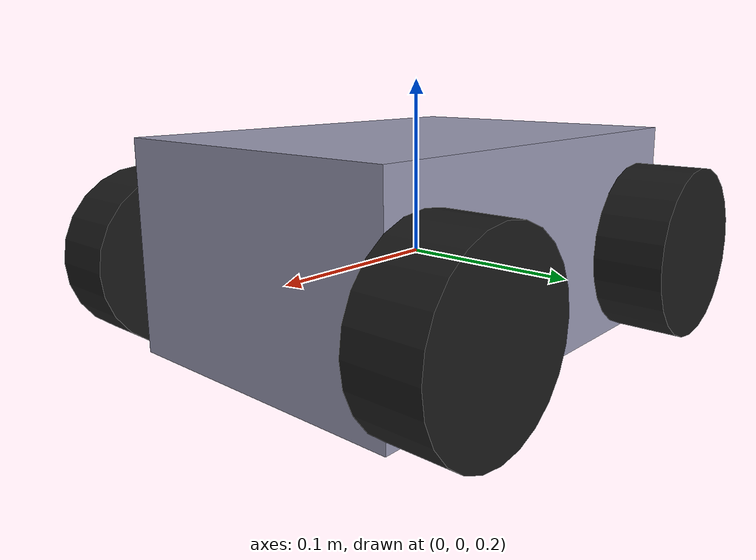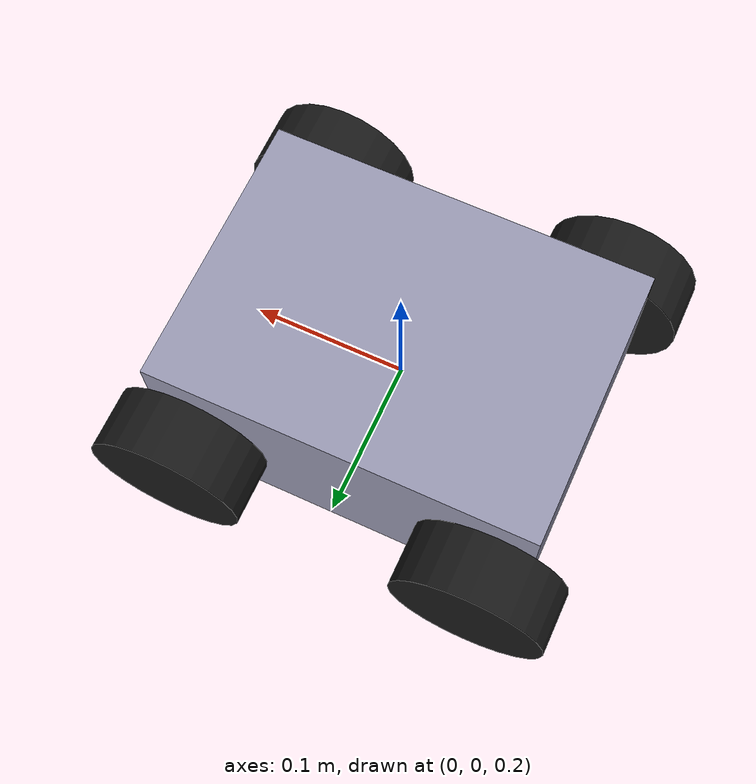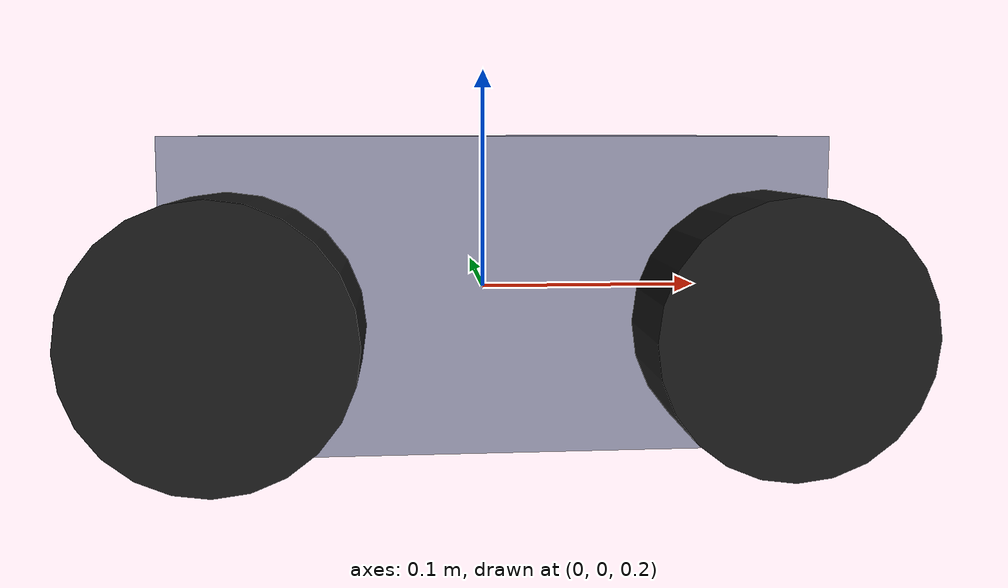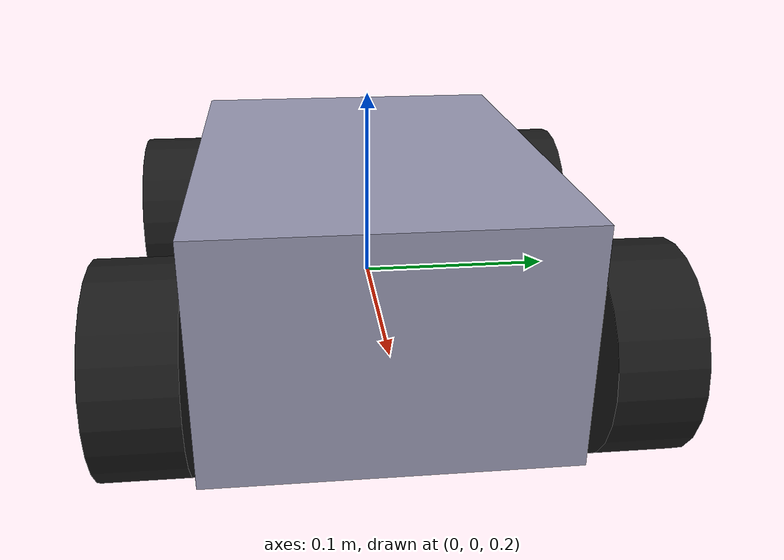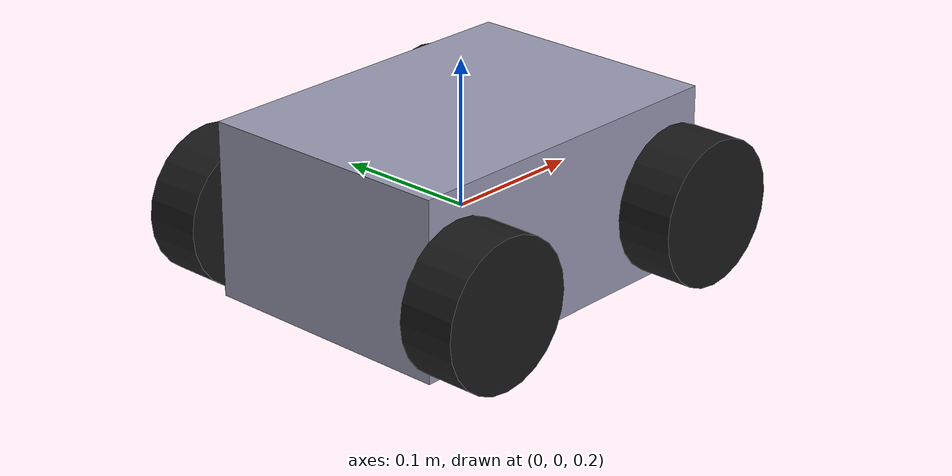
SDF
<?xml version="1.0"?>
<sdf version="1.9">
  <model name="robot_hare_wheel_bot">
    <pose>0 0 0.15 0 0 0</pose>

    <link name="base_link">
      <inertial>
        <mass>3.0</mass>
        <inertia>
          <ixx>0.05</ixx><ixy>0</ixy><ixz>0</ixz>
          <iyy>0.08</iyy><iyz>0</iyz>
          <izz>0.10</izz>
        </inertia>
      </inertial>

      <collision name="base_collision">
        <geometry><box><size>0.25 0.18 0.12</size></box></geometry>
        <pose>0 0 0.06 0 0 0</pose>
      </collision>

      <visual name="base_visual">
        <geometry><box><size>0.25 0.18 0.12</size></box></geometry>
        <pose>0 0 0.06 0 0 0</pose>
        <material>
          <ambient>0.6 0.6 0.7 1</ambient>
          <diffuse>0.6 0.6 0.7 1</diffuse>
        </material>
      </visual>
    </link>

    <link name="front_left_wheel">
      <pose>0.10 0.11 0.05 1.57079632679 0 0</pose>
      <collision name="c">
        <geometry><cylinder><radius>0.05</radius><length>0.04</length></cylinder></geometry>
      </collision>
      <visual name="v">
        <geometry><cylinder><radius>0.05</radius><length>0.04</length></cylinder></geometry>
        <material><diffuse>0.1 0.1 0.1 1</diffuse></material>
      </visual>
    </link>

    <link name="rear_left_wheel">
      <pose>-0.10 0.11 0.05 1.57079632679 0 0</pose>
      <collision name="c">
        <geometry><cylinder><radius>0.05</radius><length>0.04</length></cylinder></geometry>
      </collision>
      <visual name="v">
        <geometry><cylinder><radius>0.05</radius><length>0.04</length></cylinder></geometry>
        <material><diffuse>0.1 0.1 0.1 1</diffuse></material>
      </visual>
    </link>

    <link name="front_right_wheel">
      <pose>0.10 -0.11 0.05 1.57079632679 0 0</pose>
      <collision name="c">
        <geometry><cylinder><radius>0.05</radius><length>0.04</length></cylinder></geometry>
      </collision>
      <visual name="v">
        <geometry><cylinder><radius>0.05</radius><length>0.04</length></cylinder></geometry>
        <material><diffuse>0.1 0.1 0.1 1</diffuse></material>
      </visual>
    </link>

    <link name="rear_right_wheel">
      <pose>-0.10 -0.11 0.05 1.57079632679 0 0</pose>
      <collision name="c">
        <geometry><cylinder><radius>0.05</radius><length>0.04</length></cylinder></geometry>
      </collision>
      <visual name="v">
        <geometry><cylinder><radius>0.05</radius><length>0.04</length></cylinder></geometry>
        <material><diffuse>0.1 0.1 0.1 1</diffuse></material>
      </visual>
    </link>

    <joint name="front_left_wheel_joint" type="revolute">
      <parent>base_link</parent>
      <child>front_left_wheel</child>
      <axis><xyz>0 1 0</xyz></axis>
    </joint>

    <joint name="rear_left_wheel_joint" type="revolute">
      <parent>base_link</parent>
      <child>rear_left_wheel</child>
      <axis><xyz>0 1 0</xyz></axis>
    </joint>

    <joint name="front_right_wheel_joint" type="revolute">
      <parent>base_link</parent>
      <child>front_right_wheel</child>
      <axis><xyz>0 1 0</xyz></axis>
    </joint>

    <joint name="rear_right_wheel_joint" type="revolute">
      <parent>base_link</parent>
      <child>rear_right_wheel</child>
      <axis><xyz>0 1 0</xyz></axis>
    </joint>

    <plugin filename="gz-sim-diff-drive-system" name="gz::sim::systems::DiffDrive">
      <left_joint>front_left_wheel_joint</left_joint>
      <left_joint>rear_left_wheel_joint</left_joint>
      <right_joint>front_right_wheel_joint</right_joint>
      <right_joint>rear_right_wheel_joint</right_joint>

      <wheel_separation>0.22</wheel_separation>
      <wheel_radius>0.05</wheel_radius>

      <topic>/model/robot_hare_wheel_bot/cmd_vel</topic>
      <odom_topic>/model/robot_hare_wheel_bot/odometry</odom_topic>
      <tf_topic>/model/robot_hare_wheel_bot/tf</tf_topic>
      <frame_id>odom</frame_id>
      <child_frame_id>base_link</child_frame_id>
      <odom_publish_frequency>50</odom_publish_frequency>
    </plugin>

    <plugin filename="gz-sim-joint-state-publisher-system" name="gz::sim::systems::JointStatePublisher"/>
  </model>
</sdf>
